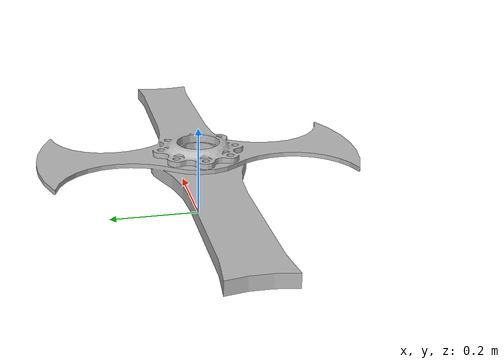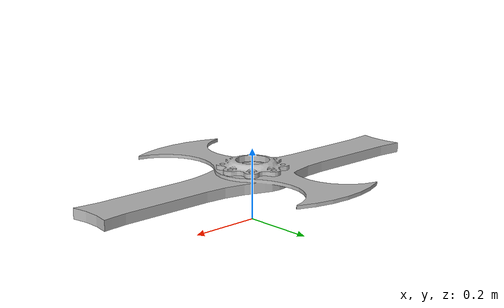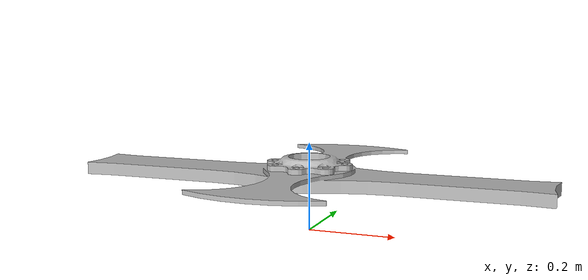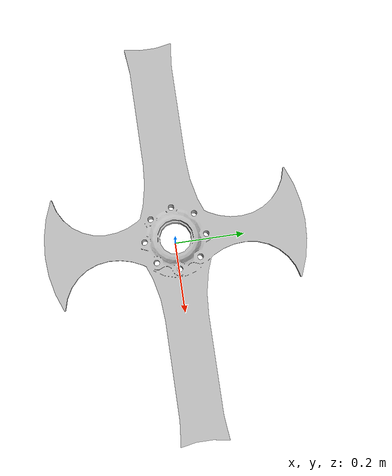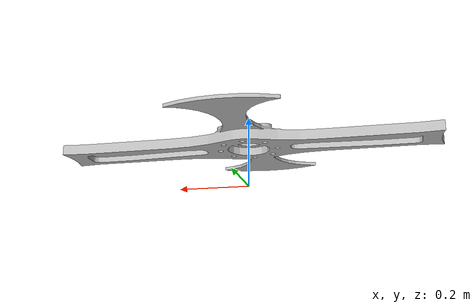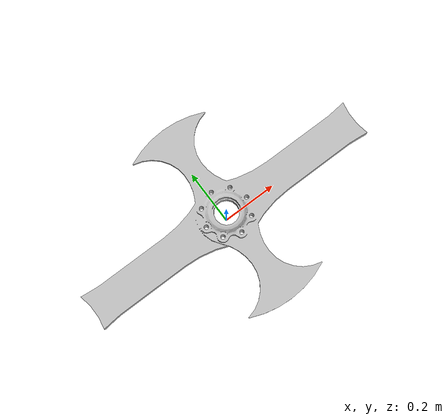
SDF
<?xml version='1.0'?>
<sdf version="1.6">
  <model name="spinner">
    <link name="spinner_link">
      <pose>0 0 0.107 1.5708 0 0</pose>
      <inertial>
        <mass>34.4</mass>
        <inertia>
          <ixx>0.392</ixx>
          <ixy>0</ixy>
          <ixz>0</ixz>
          <iyy>2.481</iyy>
          <iyz>0</iyz>
          <izz>2.104</izz>
        </inertia>
      </inertial>
      <collision name="spinner_collision">
        <geometry>
          <mesh>
            <uri>file://meshes/BS-V2-Finbar.stl</uri>
            <scale>1 1 1</scale>
          </mesh>
        </geometry>
      </collision>
      <visual name="spinner_visual">
        <geometry>
          <mesh>
            <uri>file://meshes/BS-V2-Finbar.stl</uri>
            <scale>1 1 1</scale>
          </mesh>
        </geometry>
      </visual>
      <sensor name='spinner_imu' type='imu'>
      </sensor>
    </link>
  </model>
</sdf>
